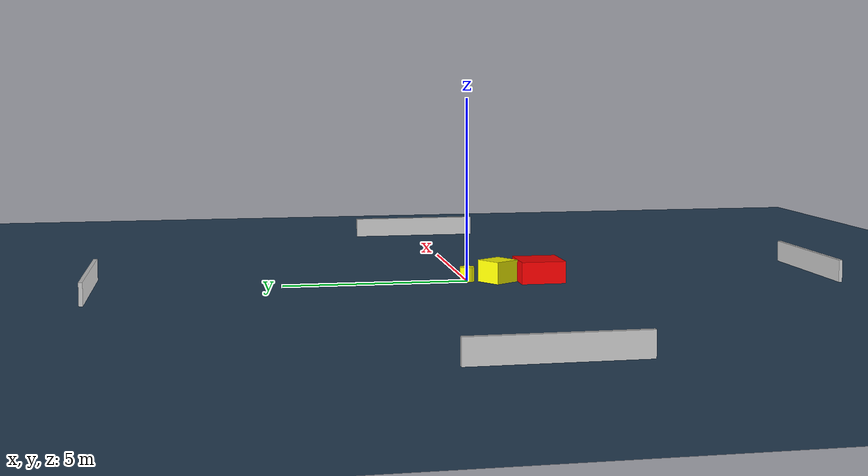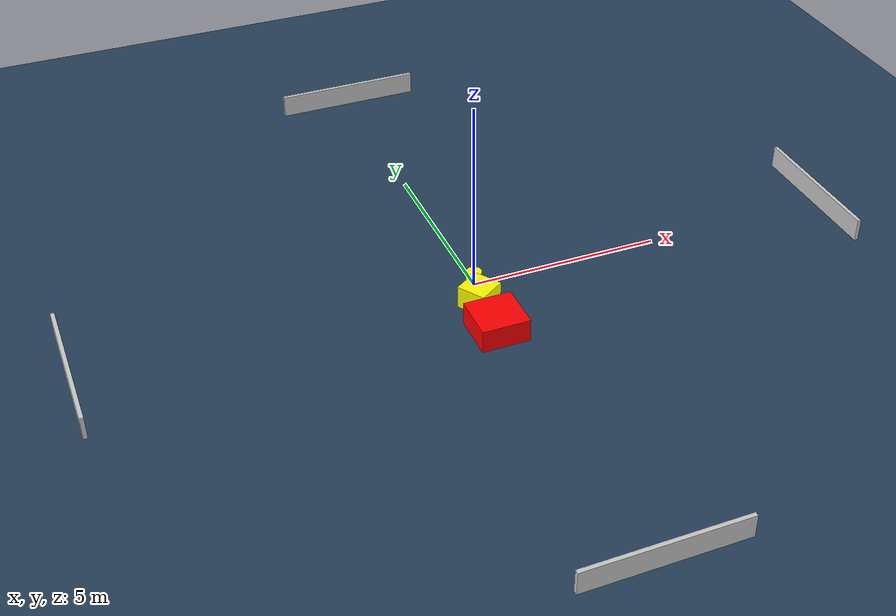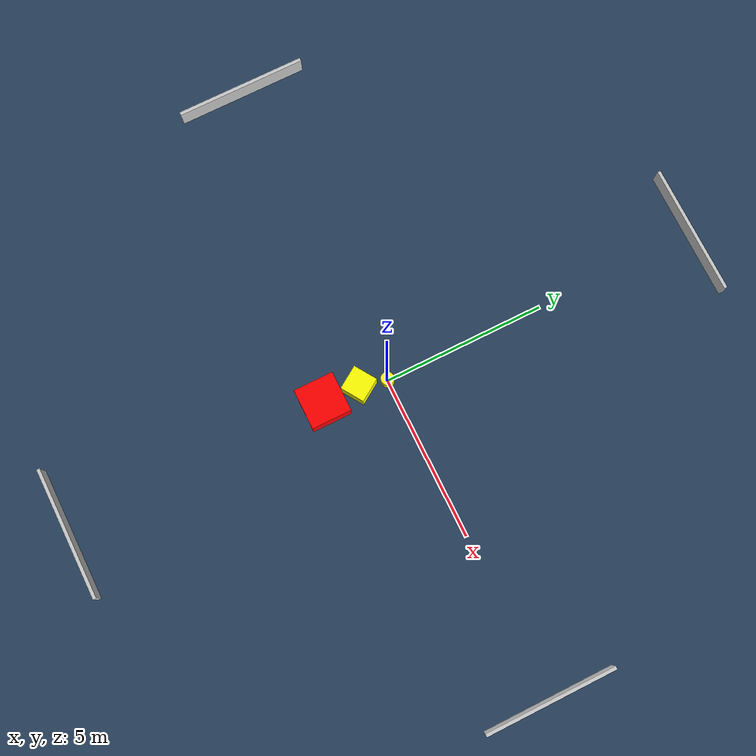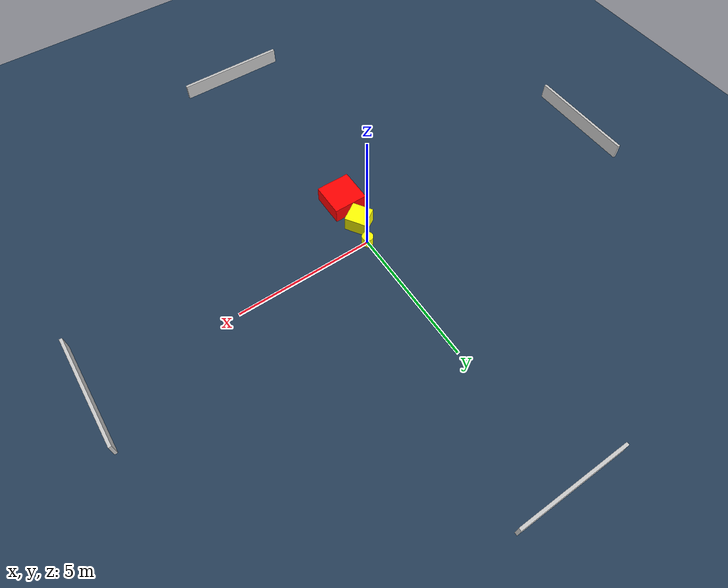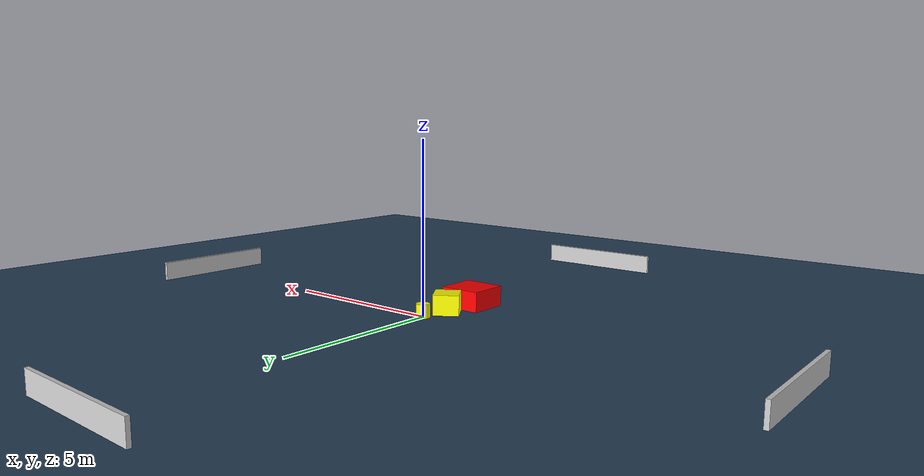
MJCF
<?xml version="1.0" ?>
<mujoco model="generated_environment">
  <option timestep="0.01" integrator="RK4" cone="elliptic"/>
  <default>
    <geom density="1"/>
  </default>
  <asset>
    <texture builtin="gradient" height="3072" name="skybox" rgb1="0.3 0.5 0.7" rgb2="0 0 0" type="skybox" width="512"/>
    <texture builtin="checker" height="300" name="groundplane" rgb1="0.2 0.3 0.4" rgb2="0.1 0.2 0.3" type="2d" width="300"/>
    <material name="groundplane" reflectance="0.2" texrepeat="5 5" texture="groundplane"/>
  </asset>
  <worldbody>
    <light dir="0 0 -1" directional="true" pos="0 0 1.5"/>
    <geom condim="3" friction="0.5 0.005 0.001" material="groundplane" name="floor" pos="0 0 0" size="0 0 0.05" type="plane"/>
    <body name="walls">
      <geom name="wall_1" condim="4" pos="-10.0 0.0 0.3" rgba="0.800000011920929 0.800000011920929 0.800000011920929 1.0" size="0.05 2.0 0.3" type="box"/>
      <geom name="wall_2" condim="4" pos="10.0 0.0 0.3" rgba="0.800000011920929 0.800000011920929 0.800000011920929 1.0" size="0.05 2.0 0.3" type="box"/>
      <geom name="wall_3" condim="4" pos="0.0 -10.0 0.3" rgba="0.800000011920929 0.800000011920929 0.800000011920929 1.0" size="2.0 0.05 0.3" type="box"/>
      <geom name="wall_4" condim="4" pos="0.0 10.0 0.3" rgba="0.800000011920929 0.800000011920929 0.800000011920929 1.0" size="2.0 0.05 0.3" type="box"/>
    </body>
    <body name="robot">
      <joint name="joint_x" type="slide" pos="0 0 0" axis="1 0 0"/>
      <joint name="joint_y" type="slide" pos="0 0 0" axis="0 1 0"/>
      <geom name="robot" type="cylinder" pos="0.0 0.0 0.2" size="0.2 0.2 0.0" mass="5.0" friction="1.0 0.005 0.0001" condim="4" rgba="1.0 1.0 0.0 1.0"/>
    </body>
    <body name="obstacle_1_movable">
      <geom name="obstacle_1_movable" condim="4" pos="-0.19726563134334338 -0.822319652714215 0.3" euler="0 0 302.98943840717675" friction="0.0 0.005 0.001" rgba="1.0 1.0 0.0 1.0" size="0.38010595817981574 0.3759434372630653 0.3" type="box" mass="0.1"/>
      <joint type="free"/>
    </body>
    <body name="obstacle_2_static">
      <geom name="obstacle_2_static" condim="4" pos="-0.22047612495478808 -1.9657302098379268 0.3" euler="0 0 269.9320966800987" friction="0.0 0.005 0.001" rgba="1.0 0.0 0.0 1.0" size="0.6097151460627654 0.617021960584349 0.3" type="box"/>
    </body>
  </worldbody>
  <actuator>
    <motor name="actuator_x" joint="joint_x" gear="1" ctrlrange="-1 1"/>
    <motor name="actuator_y" joint="joint_y" gear="1" ctrlrange="-1 1"/>
  </actuator>
</mujoco>
